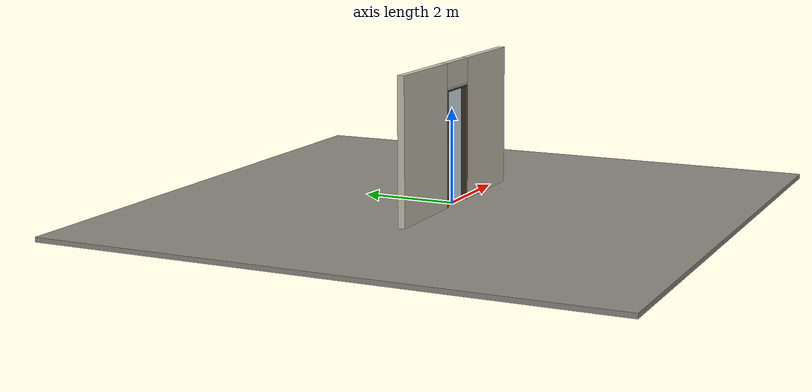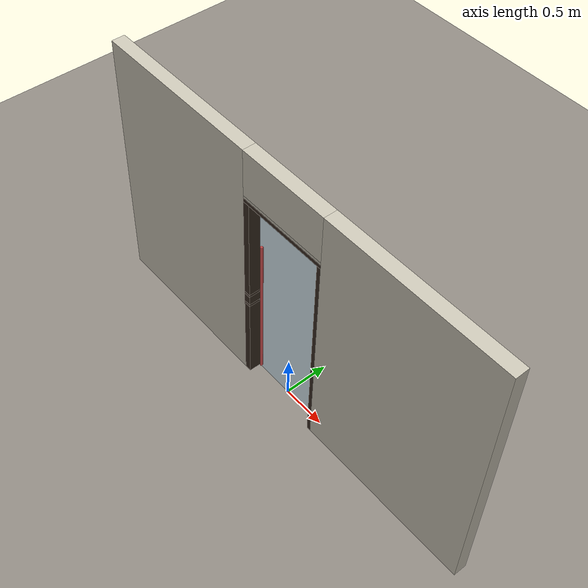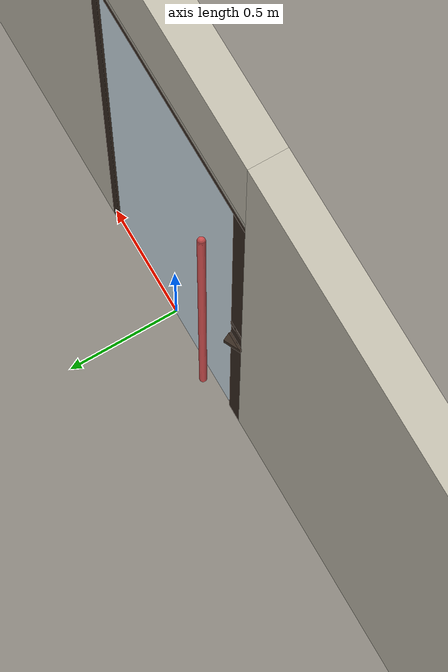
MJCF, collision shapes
<?xml version="1.0" ?>
<mujoco model="db0161_pivot_minimal">
  <compiler angle="radian" meshdir="../../hardware" texturedir="../../textures" autolimits="true" inertiafromgeom="false"/>
  <option timestep="0.002" integrator="implicitfast" cone="elliptic" impratio="10" noslip_iterations="3">
    <flag multiccd="enable"/>
  </option>
  <size memory="16M"/>
  <default>
    <geom condim="4" solref="0.005 1" solimp="0.95 0.99 0.001"/>
    <joint solreflimit="0.005 1" solimplimit="0.95 0.99 0.001"/>
    <tendon solreflimit="0.005 1"/>
    <equality solref="0.002 1"/>
  </default>
  <visual>
    <headlight ambient="0.4 0.4 0.4" diffuse="0.7 0.7 0.7" specular="0.2 0.2 0.2"/>
    <quality shadowsize="4096"/>
    <map znear="0.01" zfar="60"/>
  </visual>
  <asset>
    <mesh name="pull_897e207f65" file="pull_897e207f65.obj"/>
    <material name="mat_floor" rgba="0.55 0.53 0.5 1" specular="0.2" shininess="0.15" reflectance="0"/>
    <material name="mat_wall" rgba="0.78 0.76 0.7 1" specular="0.2" shininess="0.1" reflectance="0"/>
    <material name="mat_leaf" rgba="0.85 0.92 0.95 0.25" specular="0.2" shininess="0.95" reflectance="0.1"/>
    <material name="mat_glass_leaf" rgba="0.85 0.92 0.95 0.25" specular="0.2" shininess="0.95" reflectance="0.1"/>
    <material name="mat_patch" rgba="0.75 0.76 0.77 1" specular="0.8" shininess="0.65" reflectance="0.4"/>
    <material name="mat_hinge" rgba="0.65 0.66 0.68 1" specular="0.74" shininess="0.5" reflectance="0.36"/>
    <material name="mat_op_stainless" rgba="0.75 0.76 0.77 1" specular="0.8" shininess="0.65" reflectance="0.4"/>
    <material name="mat_bolt" rgba="0.75 0.76 0.77 1" specular="0.8" shininess="0.65" reflectance="0.4"/>
    <material name="mat_deadbolt" rgba="0.85 0.66 0.3 1" specular="0.8" shininess="0.75" reflectance="0.4"/>
    <material name="mat_frame" rgba="0.22 0.17 0.13 1" specular="0.8" shininess="0.6" reflectance="0.4"/>
    <texture name="skybox" type="skybox" builtin="gradient" rgb1="0.6 0.7 0.85" rgb2="0.9 0.92 0.95" width="256" height="256"/>
  </asset>
  <worldbody>
    <light name="sun" pos="1.5 -2.5 4" dir="-0.3 0.5 -0.8" directional="true" diffuse="0.8 0.8 0.8" specular="0.3 0.3 0.3" castshadow="true"/>
    <light name="fill" pos="-1.5 2.5 3" dir="0.3 -0.5 -0.7" directional="true" diffuse="0.35 0.35 0.4" castshadow="false"/>
    <camera name="robot_view" pos="0 -2.94575 2.01415" xyaxes="1 0 0 0 0.26963 0.962964" fovy="52"/>
    <camera name="far_view" pos="0 2.82675 2.01415" xyaxes="-1 0 0 0 -0.26963 0.962964" fovy="52"/>
    <camera name="iso" pos="-2.19355 -2.48395 2.47595" xyaxes="0.741536 -0.670913 0 0.242917 0.268487 0.932151" fovy="46"/>
    <camera name="detail_handle" pos="-0.165 -0.871 1.33" xyaxes="0.97561 0.219512 0 -0.070934 0.315262 0.94635" fovy="38"/>
    <geom name="floor" type="box" size="6 6 0.05" pos="0 0 -0.05" material="mat_floor" group="0" contype="1" conaffinity="1" friction="0.8 0.005 0.0001" density="2400"/>
    <geom name="wall_left" type="box" size="0.9845 0.0725 1.506" pos="-1.5155 -0.0595 1.506" material="mat_wall" group="0" contype="1" conaffinity="1" friction="0.6 0.005 0.0001" density="800"/>
    <geom name="wall_right" type="box" size="0.9995 0.0725 1.506" pos="1.5005 -0.0595 1.506" material="mat_wall" group="0" contype="1" conaffinity="1" friction="0.6 0.005 0.0001" density="800"/>
    <geom name="wall_header" type="box" size="0.516 0.0725 0.2625" pos="-0.015 -0.0595 2.7495" material="mat_wall" group="0" contype="1" conaffinity="1" friction="0.6 0.005 0.0001" density="800"/>
    <geom name="jamb_hinge" type="box" size="0.0225 0.0725 1.206" pos="0.4785 -0.0595 1.206" material="mat_frame" group="0" contype="1" conaffinity="1" friction="0.6 0.005 0.0001" density="300"/>
    <geom name="strike_1050_wall_n" type="box" size="0.0375 0.06275 0.015" pos="-0.4935 -0.06925 1.05" material="mat_frame" group="0" contype="1" conaffinity="1" friction="0.6 0.005 0.0001" density="300"/>
    <geom name="strike_1050_wall_p" type="box" size="0.0375 0.008 0.015" pos="-0.4935 0.0145 1.05" material="mat_frame" group="0" contype="1" conaffinity="1" friction="0.6 0.005 0.0001" density="300"/>
    <geom name="strike_1050_ramp" type="box" size="0.0375 0.016771 0.015" pos="-0.497041 0.020729 1.05" quat="0.973249 0 0 0.229753" material="mat_frame" group="0" contype="1" conaffinity="1" friction="0.12 0.005 0.0001" density="300"/>
    <geom name="strike_1050_back" type="box" size="0.0285 0.0065 0.015" pos="-0.5025 0 1.05" material="mat_frame" group="0" contype="1" conaffinity="1" friction="0.6 0.005 0.0001" density="300"/>
    <geom name="strike_1190_wall_n" type="box" size="0.0375 0.06125 0.0155" pos="-0.4935 -0.07075 1.19" material="mat_frame" group="0" contype="1" conaffinity="1" friction="0.6 0.005 0.0001" density="300"/>
    <geom name="strike_1190_wall_p" type="box" size="0.0157 0.003 0.0155" pos="-0.4717 0.0125 1.19" material="mat_frame" group="0" contype="1" conaffinity="1" friction="0.6 0.005 0.0001" density="300"/>
    <geom name="strike_1190_back" type="box" size="0.0228 0.0095 0.0155" pos="-0.5082 0 1.19" material="mat_frame" group="0" contype="1" conaffinity="1" friction="0.6 0.005 0.0001" density="300"/>
    <geom name="jamb_strike_0" type="box" size="0.0375 0.0725 0.5175" pos="-0.4935 -0.0595 0.5175" material="mat_frame" group="0" contype="1" conaffinity="1" friction="0.6 0.005 0.0001" density="300"/>
    <geom name="jamb_strike_1" type="box" size="0.0375 0.0725 0.05475" pos="-0.4935 -0.0595 1.11975" material="mat_frame" group="0" contype="1" conaffinity="1" friction="0.6 0.005 0.0001" density="300"/>
    <geom name="jamb_strike_2" type="box" size="0.0375 0.0725 0.60325" pos="-0.4935 -0.0595 1.80875" material="mat_frame" group="0" contype="1" conaffinity="1" friction="0.6 0.005 0.0001" density="300"/>
    <geom name="jamb_head" type="box" size="0.516 0.0725 0.0225" pos="-0.015 -0.0595 2.4345" material="mat_frame" group="0" contype="1" conaffinity="1" friction="0.6 0.005 0.0001" density="300"/>
    <geom name="head_stud" type="box" size="0.516 0.0725 0.015" pos="-0.015 -0.0595 2.472" material="mat_wall" group="0" contype="1" conaffinity="1" friction="0.6 0.005 0.0001" density="500"/>
    <site name="approach_point" pos="0 -1.5 0" quat="1 0 0 0" size="0.05" rgba="0.2 0.9 0.2 0.5" group="4"/>
    <site name="goal_point" pos="0 1.5 0" quat="1 0 0 0" size="0.05" rgba="0.2 0.9 0.2 0.5" group="4"/>
    <site name="door_plane_center" pos="0 0 1.206" quat="1 0 0 0" size="0.02" rgba="0.2 0.9 0.2 0.5" group="4"/>
    <body name="leaf" pos="0.456 0 0">
      <inertial pos="-0.751671 0 1.072591" mass="75.605545" quat="0.505994 0.505994 -0.493933 0.493933" diaginertia="2.139028749 23.08163619 24.592855245"/>
      <joint name="leaf_hinge" type="hinge" axis="0 0 -1" pos="-0.225 0 0" limited="true" range="0 1.570796" solreflimit="0.02 1" damping="0.33438" frictionloss="1.61549" armature="0.02"/>
      <geom name="leaf_glass" type="box" size="0.45 0.006 1.2" pos="-0.456 0 1.208" material="mat_glass_leaf" group="0" contype="1" conaffinity="1" friction="0.4 0.005 0.0001" density="1"/>
      <geom name="leaf_pull_n" type="mesh" mesh="pull_897e207f65" pos="-0.801 -0.006 1.05" quat="0 0 -0.707107 0.707107" material="mat_op_stainless" group="1" contype="0" conaffinity="0" density="3000"/>
      <geom name="leaf_pull_col_n" type="capsule" size="0.016 0.88" pos="-0.801 -0.071 1.05" material="mat_op_stainless" group="3" contype="1" conaffinity="1" rgba="0.8 0.3 0.3 0.25" friction="0.7 0.01 0.0001" density="3000"/>
      <geom name="leaf_pull_p" type="mesh" mesh="pull_897e207f65" pos="-0.801 0.006 1.05" quat="0 0 0.707107 0.707107" material="mat_op_stainless" group="1" contype="0" conaffinity="0" density="3000"/>
      <geom name="leaf_pull_col_p" type="capsule" size="0.016 0.88" pos="-0.801 0.071 1.05" material="mat_op_stainless" group="3" contype="1" conaffinity="1" rgba="0.8 0.3 0.3 0.25" friction="0.7 0.01 0.0001" density="3000"/>
      <site name="leaf_pull_grip_n" pos="-0.801 -0.071 1.05" quat="1 0 0 0" size="0.012" rgba="0.2 0.9 0.2 0.5" group="4"/>
      <site name="leaf_pull_grip_p" pos="-0.801 0.071 1.05" quat="1 0 0 0" size="0.012" rgba="0.2 0.9 0.2 0.5" group="4"/>
      <site name="leaf_edge_mid" pos="-0.906 0 1.2" quat="1 0 0 0" size="0.02" rgba="0.2 0.9 0.2 0.5" group="4"/>
      <body name="leaf_latch_bolt" pos="-0.906 0 1.05">
        <inertial pos="0.008 0 0" mass="0.027149" quat="0 0 -0.707107 0.707107" diaginertia="0.000000328 0.000003943 0.000003943"/>
        <joint name="leaf_latch_bolt_slide" type="slide" axis="1 0 0" limited="true" range="0 0.014" damping="2" frictionloss="0.3" stiffness="400" springref="-0.01" armature="0.1"/>
        <geom name="leaf_latch_bolt_capsule" type="capsule" size="0.005 0.017" pos="0.008 0 0" quat="0.707107 0 -0.707107 0" material="mat_bolt" group="0" contype="1" conaffinity="1" friction="0.2 0.005 0.0001" density="8500"/>
      </body>
    </body>
  </worldbody>
  <sensor>
    <jointpos name="leaf_hinge_pos" joint="leaf_hinge"/>
    <jointvel name="leaf_hinge_vel" joint="leaf_hinge"/>
    <jointpos name="leaf_latch_bolt_slide_pos" joint="leaf_latch_bolt_slide"/>
    <jointvel name="leaf_latch_bolt_slide_vel" joint="leaf_latch_bolt_slide"/>
  </sensor>
</mujoco>
